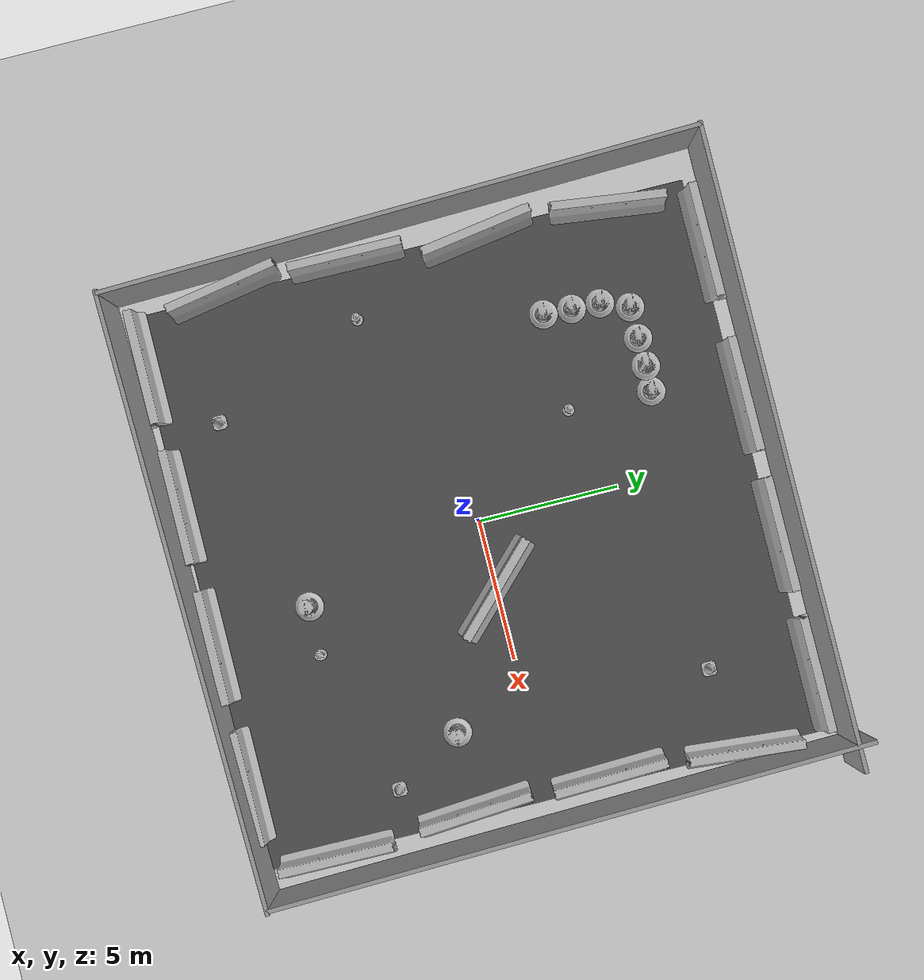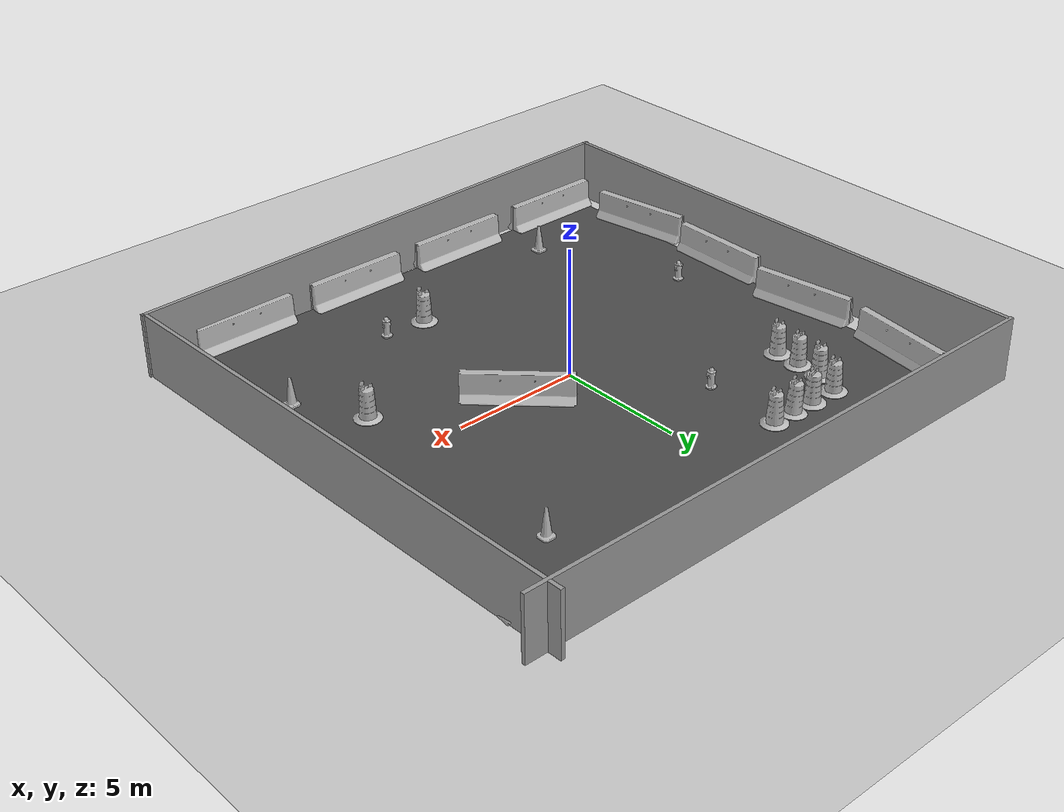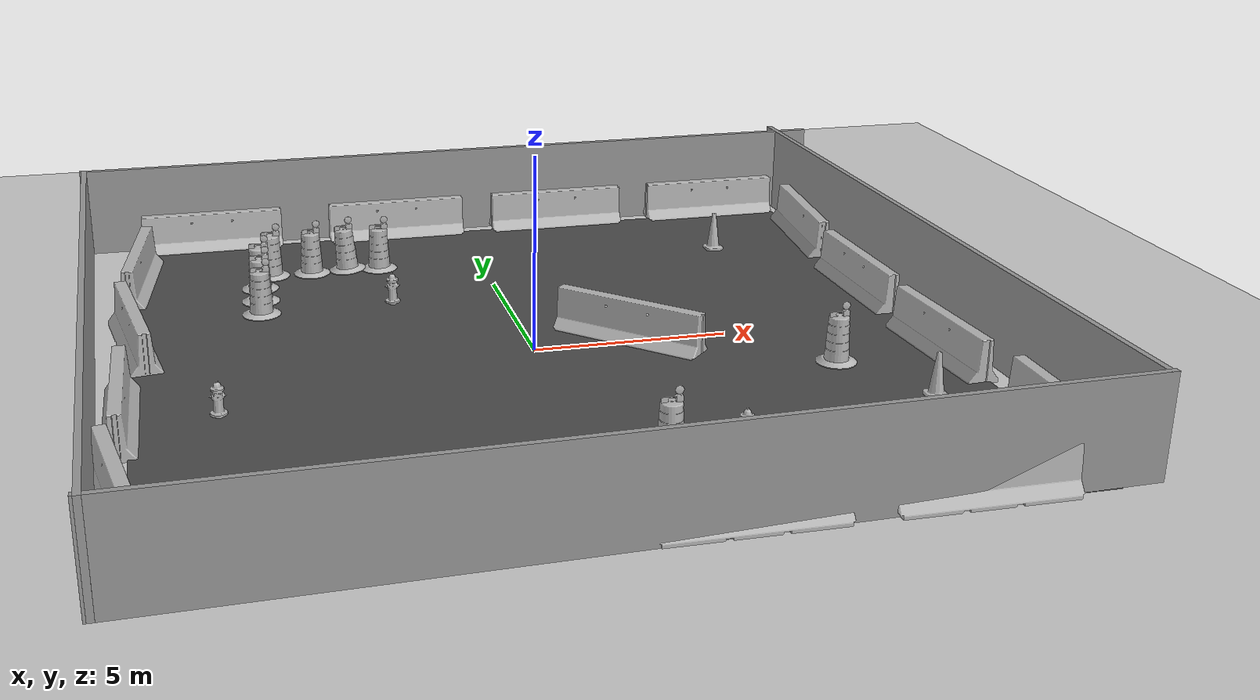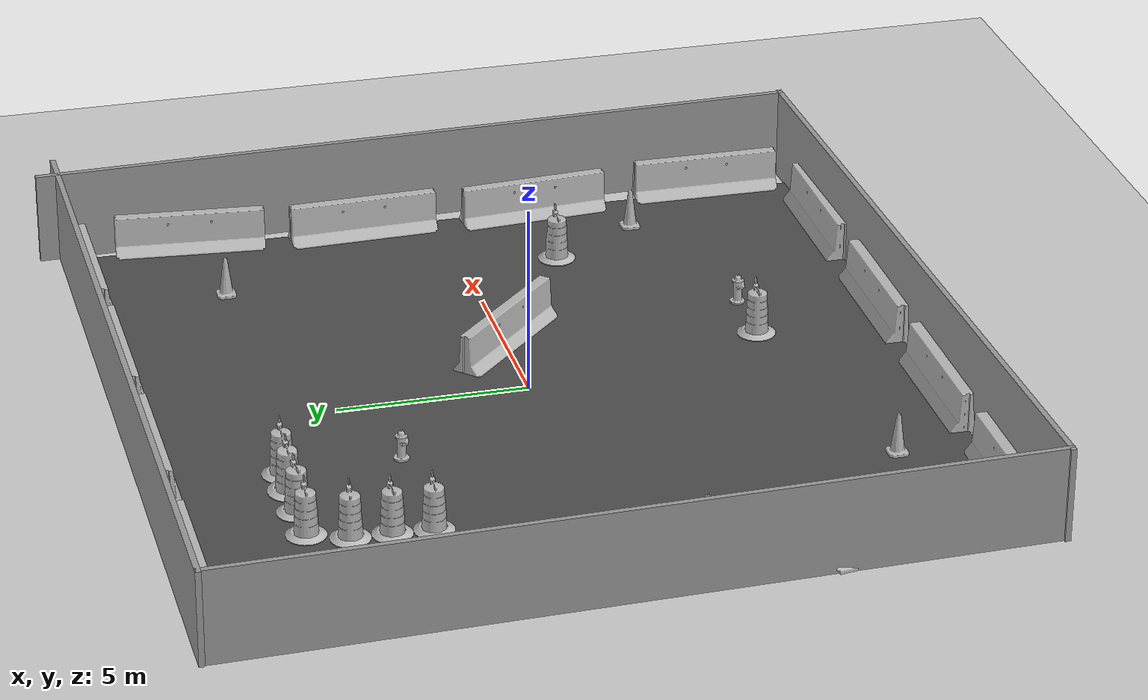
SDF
<sdf version="1.7">
 <world name="default">
  <spherical_coordinates>
   <surface_model>EARTH_WGS84</surface_model>
   <latitude_deg>43.5655</latitude_deg>
   <longitude_deg>1.474</longitude_deg>
   <elevation>150</elevation>
   <heading_deg>180</heading_deg>
  </spherical_coordinates>
  <light name="sun" type="directional">
   <pose>0 0 10 0 -0 0</pose>
   <diffuse>0.8 0.8 0.8 1</diffuse>
   <specular>0.2 0.2 0.2 1</specular>
   <attenuation>
    <range>1000</range>
    <constant>0.9</constant>
    <linear>0.01</linear>
    <quadratic>0.001</quadratic>
   </attenuation>
   <direction>-0.5 0.1 -0.9</direction>
   <spot><inner_angle>0</inner_angle><outer_angle>0</outer_angle><falloff>0</falloff></spot>
  </light>
  <model name="ground_plane">
   <static>1</static>
   <link name="link">
    <collision name="collision">
     <geometry><plane><normal>0 0 1</normal><size>100 100</size></plane></geometry>
     <surface><friction><ode><mu>100</mu><mu2>50</mu2></ode></friction></surface>
    </collision>
    <visual name="visual">
     <cast_shadows>0</cast_shadows>
     <geometry><plane><normal>0 0 1</normal><size>100 100</size></plane></geometry>
     <material>
      <script><uri>file://media/materials/scripts/gazebo.material</uri><name>Gazebo/Grey</name></script>
     </material>
    </visual>
    <velocity_decay><linear>0</linear><angular>0</angular></velocity_decay>
   </link>
  </model>
  <physics type="ode">
   <max_step_size>0.001</max_step_size>
   <real_time_factor>1</real_time_factor>
   <real_time_update_rate>1000</real_time_update_rate>
  </physics>
  <scene><ambient>0.4 0.4 0.4 1</ambient><background>0.7 0.7 0.7 1</background><shadows>1</shadows></scene>
  <model name="jersey_barrier">
   <static>1</static>
   <link name="link">
    <visual name="visual">
     <geometry><mesh><uri>model://jersey_barrier/meshes/jersey_barrier.dae</uri></mesh></geometry>
    </visual>
    <collision name="upright">
     <pose>0 0 0.5715 0 -0 0</pose>
     <geometry><box><size>4.06542 0.3063 1.143</size></box></geometry>
    </collision>
    <collision name="base">
     <pose>0 0 0.032258 0 -0 0</pose>
     <geometry><box><size>4.06542 0.8107 0.064516</size></box></geometry>
    </collision>
    <collision name="base2">
     <pose>0 0 0.1 0 -0 0</pose>
     <geometry><box><size>4.06542 0.65 0.1</size></box></geometry>
    </collision>
    <collision name="base3">
     <pose>0 0 0.2 0 -0 0</pose>
     <geometry><box><size>4.06542 0.5 0.1</size></box></geometry>
    </collision>
    <collision name="left-angle">
     <pose>0 -0.224 0.2401 0.9 -0 0</pose>
     <geometry><box><size>4.06542 0.5 0.064516</size></box></geometry>
    </collision>
    <collision name="right-angle">
     <pose>0 0.224 0.2401 -0.9 0 0</pose>
     <geometry><box><size>4.06542 0.5 0.064516</size></box></geometry>
    </collision>
    <velocity_decay><linear>0</linear><angular>0</angular></velocity_decay>
   </link>
   <pose>-8 -10 0 0 -0 0</pose>
  </model>
  <model name="jersey_barrier_0">
   <static>1</static>
   <link name="link">
    <visual name="visual">
     <geometry><mesh><uri>model://jersey_barrier/meshes/jersey_barrier.dae</uri></mesh></geometry>
    </visual>
    <collision name="upright">
     <pose>0 0 0.5715 0 -0 0</pose>
     <geometry><box><size>4.06542 0.3063 1.143</size></box></geometry>
    </collision>
    <collision name="base">
     <pose>0 0 0.032258 0 -0 0</pose>
     <geometry><box><size>4.06542 0.8107 0.064516</size></box></geometry>
    </collision>
    <collision name="base2">
     <pose>0 0 0.1 0 -0 0</pose>
     <geometry><box><size>4.06542 0.65 0.1</size></box></geometry>
    </collision>
    <collision name="base3">
     <pose>0 0 0.2 0 -0 0</pose>
     <geometry><box><size>4.06542 0.5 0.1</size></box></geometry>
    </collision>
    <collision name="left-angle">
     <pose>0 -0.224 0.2401 0.9 -0 0</pose>
     <geometry><box><size>4.06542 0.5 0.064516</size></box></geometry>
    </collision>
    <collision name="right-angle">
     <pose>0 0.224 0.2401 -0.9 0 0</pose>
     <geometry><box><size>4.06542 0.5 0.064516</size></box></geometry>
    </collision>
    <velocity_decay><linear>0</linear><angular>0</angular></velocity_decay>
   </link>
   <pose>-3 -10 0 0 -0 0</pose>
  </model>
  <model name="jersey_barrier_1">
   <static>1</static>
   <link name="link">
    <visual name="visual">
     <geometry><mesh><uri>model://jersey_barrier/meshes/jersey_barrier.dae</uri></mesh></geometry>
    </visual>
    <collision name="upright">
     <pose>0 0 0.5715 0 -0 0</pose>
     <geometry><box><size>4.06542 0.3063 1.143</size></box></geometry>
    </collision>
    <collision name="base">
     <pose>0 0 0.032258 0 -0 0</pose>
     <geometry><box><size>4.06542 0.8107 0.064516</size></box></geometry>
    </collision>
    <collision name="base2">
     <pose>0 0 0.1 0 -0 0</pose>
     <geometry><box><size>4.06542 0.65 0.1</size></box></geometry>
    </collision>
    <collision name="base3">
     <pose>0 0 0.2 0 -0 0</pose>
     <geometry><box><size>4.06542 0.5 0.1</size></box></geometry>
    </collision>
    <collision name="left-angle">
     <pose>0 -0.224 0.2401 0.9 -0 0</pose>
     <geometry><box><size>4.06542 0.5 0.064516</size></box></geometry>
    </collision>
    <collision name="right-angle">
     <pose>0 0.224 0.2401 -0.9 0 0</pose>
     <geometry><box><size>4.06542 0.5 0.064516</size></box></geometry>
    </collision>
    <velocity_decay><linear>0</linear><angular>0</angular></velocity_decay>
   </link>
   <pose>2 -10 0 0 -0 0</pose>
  </model>
  <model name="jersey_barrier_2">
   <static>1</static>
   <link name="link">
    <visual name="visual">
     <geometry><mesh><uri>model://jersey_barrier/meshes/jersey_barrier.dae</uri></mesh></geometry>
    </visual>
    <collision name="upright">
     <pose>0 0 0.5715 0 -0 0</pose>
     <geometry><box><size>4.06542 0.3063 1.143</size></box></geometry>
    </collision>
    <collision name="base">
     <pose>0 0 0.032258 0 -0 0</pose>
     <geometry><box><size>4.06542 0.8107 0.064516</size></box></geometry>
    </collision>
    <collision name="base2">
     <pose>0 0 0.1 0 -0 0</pose>
     <geometry><box><size>4.06542 0.65 0.1</size></box></geometry>
    </collision>
    <collision name="base3">
     <pose>0 0 0.2 0 -0 0</pose>
     <geometry><box><size>4.06542 0.5 0.1</size></box></geometry>
    </collision>
    <collision name="left-angle">
     <pose>0 -0.224 0.2401 0.9 -0 0</pose>
     <geometry><box><size>4.06542 0.5 0.064516</size></box></geometry>
    </collision>
    <collision name="right-angle">
     <pose>0 0.224 0.2401 -0.9 0 0</pose>
     <geometry><box><size>4.06542 0.5 0.064516</size></box></geometry>
    </collision>
    <velocity_decay><linear>0</linear><angular>0</angular></velocity_decay>
   </link>
   <pose>7 -10 0 0 -0 0</pose>
  </model>
  <model name="jersey_barrier_3">
   <static>1</static>
   <link name="link">
    <visual name="visual">
     <geometry><mesh><uri>model://jersey_barrier/meshes/jersey_barrier.dae</uri></mesh></geometry>
    </visual>
    <collision name="upright">
     <pose>0 0 0.5715 0 -0 0</pose>
     <geometry><box><size>4.06542 0.3063 1.143</size></box></geometry>
    </collision>
    <collision name="base">
     <pose>0 0 0.032258 0 -0 0</pose>
     <geometry><box><size>4.06542 0.8107 0.064516</size></box></geometry>
    </collision>
    <collision name="base2">
     <pose>0 0 0.1 0 -0 0</pose>
     <geometry><box><size>4.06542 0.65 0.1</size></box></geometry>
    </collision>
    <collision name="base3">
     <pose>0 0 0.2 0 -0 0</pose>
     <geometry><box><size>4.06542 0.5 0.1</size></box></geometry>
    </collision>
    <collision name="left-angle">
     <pose>0 -0.224 0.2401 0.9 -0 0</pose>
     <geometry><box><size>4.06542 0.5 0.064516</size></box></geometry>
    </collision>
    <collision name="right-angle">
     <pose>0 0.224 0.2401 -0.9 0 0</pose>
     <geometry><box><size>4.06542 0.5 0.064516</size></box></geometry>
    </collision>
    <velocity_decay><linear>0</linear><angular>0</angular></velocity_decay>
   </link>
   <pose>-7.50675 10 0 0 -0 0</pose>
  </model>
  <model name="jersey_barrier_4">
   <static>1</static>
   <link name="link">
    <visual name="visual">
     <geometry><mesh><uri>model://jersey_barrier/meshes/jersey_barrier.dae</uri></mesh></geometry>
    </visual>
    <collision name="upright">
     <pose>0 0 0.5715 0 -0 0</pose>
     <geometry><box><size>4.06542 0.3063 1.143</size></box></geometry>
    </collision>
    <collision name="base">
     <pose>0 0 0.032258 0 -0 0</pose>
     <geometry><box><size>4.06542 0.8107 0.064516</size></box></geometry>
    </collision>
    <collision name="base2">
     <pose>0 0 0.1 0 -0 0</pose>
     <geometry><box><size>4.06542 0.65 0.1</size></box></geometry>
    </collision>
    <collision name="base3">
     <pose>0 0 0.2 0 -0 0</pose>
     <geometry><box><size>4.06542 0.5 0.1</size></box></geometry>
    </collision>
    <collision name="left-angle">
     <pose>0 -0.224 0.2401 0.9 -0 0</pose>
     <geometry><box><size>4.06542 0.5 0.064516</size></box></geometry>
    </collision>
    <collision name="right-angle">
     <pose>0 0.224 0.2401 -0.9 0 0</pose>
     <geometry><box><size>4.06542 0.5 0.064516</size></box></geometry>
    </collision>
    <velocity_decay><linear>0</linear><angular>0</angular></velocity_decay>
   </link>
   <pose>-2 10 0 0 -0 0</pose>
  </model>
  <model name="jersey_barrier_5">
   <static>1</static>
   <link name="link">
    <visual name="visual">
     <geometry><mesh><uri>model://jersey_barrier/meshes/jersey_barrier.dae</uri></mesh></geometry>
    </visual>
    <collision name="upright">
     <pose>0 0 0.5715 0 -0 0</pose>
     <geometry><box><size>4.06542 0.3063 1.143</size></box></geometry>
    </collision>
    <collision name="base">
     <pose>0 0 0.032258 0 -0 0</pose>
     <geometry><box><size>4.06542 0.8107 0.064516</size></box></geometry>
    </collision>
    <collision name="base2">
     <pose>0 0 0.1 0 -0 0</pose>
     <geometry><box><size>4.06542 0.65 0.1</size></box></geometry>
    </collision>
    <collision name="base3">
     <pose>0 0 0.2 0 -0 0</pose>
     <geometry><box><size>4.06542 0.5 0.1</size></box></geometry>
    </collision>
    <collision name="left-angle">
     <pose>0 -0.224 0.2401 0.9 -0 0</pose>
     <geometry><box><size>4.06542 0.5 0.064516</size></box></geometry>
    </collision>
    <collision name="right-angle">
     <pose>0 0.224 0.2401 -0.9 0 0</pose>
     <geometry><box><size>4.06542 0.5 0.064516</size></box></geometry>
    </collision>
    <velocity_decay><linear>0</linear><angular>0</angular></velocity_decay>
   </link>
   <pose>3 10 0 0 -0 0</pose>
  </model>
  <model name="jersey_barrier_6">
   <static>1</static>
   <link name="link">
    <visual name="visual">
     <geometry><mesh><uri>model://jersey_barrier/meshes/jersey_barrier.dae</uri></mesh></geometry>
    </visual>
    <collision name="upright">
     <pose>0 0 0.5715 0 -0 0</pose>
     <geometry><box><size>4.06542 0.3063 1.143</size></box></geometry>
    </collision>
    <collision name="base">
     <pose>0 0 0.032258 0 -0 0</pose>
     <geometry><box><size>4.06542 0.8107 0.064516</size></box></geometry>
    </collision>
    <collision name="base2">
     <pose>0 0 0.1 0 -0 0</pose>
     <geometry><box><size>4.06542 0.65 0.1</size></box></geometry>
    </collision>
    <collision name="base3">
     <pose>0 0 0.2 0 -0 0</pose>
     <geometry><box><size>4.06542 0.5 0.1</size></box></geometry>
    </collision>
    <collision name="left-angle">
     <pose>0 -0.224 0.2401 0.9 -0 0</pose>
     <geometry><box><size>4.06542 0.5 0.064516</size></box></geometry>
    </collision>
    <collision name="right-angle">
     <pose>0 0.224 0.2401 -0.9 0 0</pose>
     <geometry><box><size>4.06542 0.5 0.064516</size></box></geometry>
    </collision>
    <velocity_decay><linear>0</linear><angular>0</angular></velocity_decay>
   </link>
   <pose>8 10 0 0 -0 0</pose>
  </model>
  <model name="jersey_barrier_7">
   <static>1</static>
   <link name="link">
    <visual name="visual">
     <geometry><mesh><uri>model://jersey_barrier/meshes/jersey_barrier.dae</uri></mesh></geometry>
    </visual>
    <collision name="upright">
     <pose>0 0 0.5715 0 -0 0</pose>
     <geometry><box><size>4.06542 0.3063 1.143</size></box></geometry>
    </collision>
    <collision name="base">
     <pose>0 0 0.032258 0 -0 0</pose>
     <geometry><box><size>4.06542 0.8107 0.064516</size></box></geometry>
    </collision>
    <collision name="base2">
     <pose>0 0 0.1 0 -0 0</pose>
     <geometry><box><size>4.06542 0.65 0.1</size></box></geometry>
    </collision>
    <collision name="base3">
     <pose>0 0 0.2 0 -0 0</pose>
     <geometry><box><size>4.06542 0.5 0.1</size></box></geometry>
    </collision>
    <collision name="left-angle">
     <pose>0 -0.224 0.2401 0.9 -0 0</pose>
     <geometry><box><size>4.06542 0.5 0.064516</size></box></geometry>
    </collision>
    <collision name="right-angle">
     <pose>0 0.224 0.2401 -0.9 0 0</pose>
     <geometry><box><size>4.06542 0.5 0.064516</size></box></geometry>
    </collision>
    <velocity_decay><linear>0</linear><angular>0</angular></velocity_decay>
   </link>
   <pose>9.74902 -2.57759 0 0 -0 1.64</pose>
  </model>
  <model name="jersey_barrier_8">
   <static>1</static>
   <link name="link">
    <visual name="visual">
     <geometry><mesh><uri>model://jersey_barrier/meshes/jersey_barrier.dae</uri></mesh></geometry>
    </visual>
    <collision name="upright">
     <pose>0 0 0.5715 0 -0 0</pose>
     <geometry><box><size>4.06542 0.3063 1.143</size></box></geometry>
    </collision>
    <collision name="base">
     <pose>0 0 0.032258 0 -0 0</pose>
     <geometry><box><size>4.06542 0.8107 0.064516</size></box></geometry>
    </collision>
    <collision name="base2">
     <pose>0 0 0.1 0 -0 0</pose>
     <geometry><box><size>4.06542 0.65 0.1</size></box></geometry>
    </collision>
    <collision name="base3">
     <pose>0 0 0.2 0 -0 0</pose>
     <geometry><box><size>4.06542 0.5 0.1</size></box></geometry>
    </collision>
    <collision name="left-angle">
     <pose>0 -0.224 0.2401 0.9 -0 0</pose>
     <geometry><box><size>4.06542 0.5 0.064516</size></box></geometry>
    </collision>
    <collision name="right-angle">
     <pose>0 0.224 0.2401 -0.9 0 0</pose>
     <geometry><box><size>4.06542 0.5 0.064516</size></box></geometry>
    </collision>
    <velocity_decay><linear>0</linear><angular>0</angular></velocity_decay>
   </link>
   <pose>9.70141 2.24369 0 0 -0 1.6</pose>
  </model>
  <model name="jersey_barrier_9">
   <static>1</static>
   <link name="link">
    <visual name="visual">
     <geometry><mesh><uri>model://jersey_barrier/meshes/jersey_barrier.dae</uri></mesh></geometry>
    </visual>
    <collision name="upright">
     <pose>0 0 0.5715 0 -0 0</pose>
     <geometry><box><size>4.06542 0.3063 1.143</size></box></geometry>
    </collision>
    <collision name="base">
     <pose>0 0 0.032258 0 -0 0</pose>
     <geometry><box><size>4.06542 0.8107 0.064516</size></box></geometry>
    </collision>
    <collision name="base2">
     <pose>0 0 0.1 0 -0 0</pose>
     <geometry><box><size>4.06542 0.65 0.1</size></box></geometry>
    </collision>
    <collision name="base3">
     <pose>0 0 0.2 0 -0 0</pose>
     <geometry><box><size>4.06542 0.5 0.1</size></box></geometry>
    </collision>
    <collision name="left-angle">
     <pose>0 -0.224 0.2401 0.9 -0 0</pose>
     <geometry><box><size>4.06542 0.5 0.064516</size></box></geometry>
    </collision>
    <collision name="right-angle">
     <pose>0 0.224 0.2401 -0.9 0 0</pose>
     <geometry><box><size>4.06542 0.5 0.064516</size></box></geometry>
    </collision>
    <velocity_decay><linear>0</linear><angular>0</angular></velocity_decay>
   </link>
   <pose>-10.0607 -6.69856 0 0 0 -1.4</pose>
  </model>
  <model name="jersey_barrier_10">
   <static>1</static>
   <link name="link">
    <visual name="visual">
     <geometry><mesh><uri>model://jersey_barrier/meshes/jersey_barrier.dae</uri></mesh></geometry>
    </visual>
    <collision name="upright">
     <pose>0 0 0.5715 0 -0 0</pose>
     <geometry><box><size>4.06542 0.3063 1.143</size></box></geometry>
    </collision>
    <collision name="base">
     <pose>0 0 0.032258 0 -0 0</pose>
     <geometry><box><size>4.06542 0.8107 0.064516</size></box></geometry>
    </collision>
    <collision name="base2">
     <pose>0 0 0.1 0 -0 0</pose>
     <geometry><box><size>4.06542 0.65 0.1</size></box></geometry>
    </collision>
    <collision name="base3">
     <pose>0 0 0.2 0 -0 0</pose>
     <geometry><box><size>4.06542 0.5 0.1</size></box></geometry>
    </collision>
    <collision name="left-angle">
     <pose>0 -0.224 0.2401 0.9 -0 0</pose>
     <geometry><box><size>4.06542 0.5 0.064516</size></box></geometry>
    </collision>
    <collision name="right-angle">
     <pose>0 0.224 0.2401 -0.9 0 0</pose>
     <geometry><box><size>4.06542 0.5 0.064516</size></box></geometry>
    </collision>
    <velocity_decay><linear>0</linear><angular>0</angular></velocity_decay>
   </link>
   <pose>-10.0774 -2.27159 0 0 -0 1.56</pose>
  </model>
  <model name="jersey_barrier_11">
   <static>1</static>
   <link name="link">
    <visual name="visual">
     <geometry><mesh><uri>model://jersey_barrier/meshes/jersey_barrier.dae</uri></mesh></geometry>
    </visual>
    <collision name="upright">
     <pose>0 0 0.5715 0 -0 0</pose>
     <geometry><box><size>4.06542 0.3063 1.143</size></box></geometry>
    </collision>
    <collision name="base">
     <pose>0 0 0.032258 0 -0 0</pose>
     <geometry><box><size>4.06542 0.8107 0.064516</size></box></geometry>
    </collision>
    <collision name="base2">
     <pose>0 0 0.1 0 -0 0</pose>
     <geometry><box><size>4.06542 0.65 0.1</size></box></geometry>
    </collision>
    <collision name="base3">
     <pose>0 0 0.2 0 -0 0</pose>
     <geometry><box><size>4.06542 0.5 0.1</size></box></geometry>
    </collision>
    <collision name="left-angle">
     <pose>0 -0.224 0.2401 0.9 -0 0</pose>
     <geometry><box><size>4.06542 0.5 0.064516</size></box></geometry>
    </collision>
    <collision name="right-angle">
     <pose>0 0.224 0.2401 -0.9 0 0</pose>
     <geometry><box><size>4.06542 0.5 0.064516</size></box></geometry>
    </collision>
    <velocity_decay><linear>0</linear><angular>0</angular></velocity_decay>
   </link>
   <pose>-9.77013 2.34791 0 0 -0 1.72</pose>
  </model>
  <model name="jersey_barrier_12">
   <static>1</static>
   <link name="link">
    <visual name="visual">
     <geometry><mesh><uri>model://jersey_barrier/meshes/jersey_barrier.dae</uri></mesh></geometry>
    </visual>
    <collision name="upright">
     <pose>0 0 0.5715 0 -0 0</pose>
     <geometry><box><size>4.06542 0.3063 1.143</size></box></geometry>
    </collision>
    <collision name="base">
     <pose>0 0 0.032258 0 -0 0</pose>
     <geometry><box><size>4.06542 0.8107 0.064516</size></box></geometry>
    </collision>
    <collision name="base2">
     <pose>0 0 0.1 0 -0 0</pose>
     <geometry><box><size>4.06542 0.65 0.1</size></box></geometry>
    </collision>
    <collision name="base3">
     <pose>0 0 0.2 0 -0 0</pose>
     <geometry><box><size>4.06542 0.5 0.1</size></box></geometry>
    </collision>
    <collision name="left-angle">
     <pose>0 -0.224 0.2401 0.9 -0 0</pose>
     <geometry><box><size>4.06542 0.5 0.064516</size></box></geometry>
    </collision>
    <collision name="right-angle">
     <pose>0 0.224 0.2401 -0.9 0 0</pose>
     <geometry><box><size>4.06542 0.5 0.064516</size></box></geometry>
    </collision>
    <velocity_decay><linear>0</linear><angular>0</angular></velocity_decay>
   </link>
   <pose>10.0879 -7.62159 0 0 -0 1.56</pose>
  </model>
  <model name="jersey_barrier_13">
   <static>1</static>
   <link name="link">
    <visual name="visual">
     <geometry><mesh><uri>model://jersey_barrier/meshes/jersey_barrier.dae</uri></mesh></geometry>
    </visual>
    <collision name="upright">
     <pose>0 0 0.5715 0 -0 0</pose>
     <geometry><box><size>4.06542 0.3063 1.143</size></box></geometry>
    </collision>
    <collision name="base">
     <pose>0 0 0.032258 0 -0 0</pose>
     <geometry><box><size>4.06542 0.8107 0.064516</size></box></geometry>
    </collision>
    <collision name="base2">
     <pose>0 0 0.1 0 -0 0</pose>
     <geometry><box><size>4.06542 0.65 0.1</size></box></geometry>
    </collision>
    <collision name="base3">
     <pose>0 0 0.2 0 -0 0</pose>
     <geometry><box><size>4.06542 0.5 0.1</size></box></geometry>
    </collision>
    <collision name="left-angle">
     <pose>0 -0.224 0.2401 0.9 -0 0</pose>
     <geometry><box><size>4.06542 0.5 0.064516</size></box></geometry>
    </collision>
    <collision name="right-angle">
     <pose>0 0.224 0.2401 -0.9 0 0</pose>
     <geometry><box><size>4.06542 0.5 0.064516</size></box></geometry>
    </collision>
    <velocity_decay><linear>0</linear><angular>0</angular></velocity_decay>
   </link>
   <pose>10 7 0 0 -0 1.48</pose>
  </model>
  <model name="jersey_barrier_14">
   <static>1</static>
   <link name="link">
    <visual name="visual">
     <geometry><mesh><uri>model://jersey_barrier/meshes/jersey_barrier.dae</uri></mesh></geometry>
    </visual>
    <collision name="upright">
     <pose>0 0 0.5715 0 -0 0</pose>
     <geometry><box><size>4.06542 0.3063 1.143</size></box></geometry>
    </collision>
    <collision name="base">
     <pose>0 0 0.032258 0 -0 0</pose>
     <geometry><box><size>4.06542 0.8107 0.064516</size></box></geometry>
    </collision>
    <collision name="base2">
     <pose>0 0 0.1 0 -0 0</pose>
     <geometry><box><size>4.06542 0.65 0.1</size></box></geometry>
    </collision>
    <collision name="base3">
     <pose>0 0 0.2 0 -0 0</pose>
     <geometry><box><size>4.06542 0.5 0.1</size></box></geometry>
    </collision>
    <collision name="left-angle">
     <pose>0 -0.224 0.2401 0.9 -0 0</pose>
     <geometry><box><size>4.06542 0.5 0.064516</size></box></geometry>
    </collision>
    <collision name="right-angle">
     <pose>0 0.224 0.2401 -0.9 0 0</pose>
     <geometry><box><size>4.06542 0.5 0.064516</size></box></geometry>
    </collision>
    <velocity_decay><linear>0</linear><angular>0</angular></velocity_decay>
   </link>
   <pose>-9.64482 7.05946 0 0 -0 1.44</pose>
  </model>
  <model name="fire_hydrant">
   <static>1</static>
   <link name="link">
    <collision name="collision">
     <geometry><mesh><uri>model://fire_hydrant/meshes/fire_hydrant.dae</uri></mesh></geometry>
    </collision>
    <visual name="visual">
     <geometry><mesh><uri>model://fire_hydrant/meshes/fire_hydrant.dae</uri></mesh></geometry>
    </visual>
    <velocity_decay><linear>0</linear><angular>0</angular></velocity_decay>
   </link>
   <pose>3.18024 -6.51118 0 0 -0 0</pose>
  </model>
  <model name="fire_hydrant_0">
   <static>1</static>
   <link name="link">
    <collision name="collision">
     <geometry><mesh><uri>model://fire_hydrant/meshes/fire_hydrant.dae</uri></mesh></geometry>
    </collision>
    <visual name="visual">
     <geometry><mesh><uri>model://fire_hydrant/meshes/fire_hydrant.dae</uri></mesh></geometry>
    </visual>
    <velocity_decay><linear>0</linear><angular>0</angular></velocity_decay>
   </link>
   <pose>-3 4 0 0 -0 0</pose>
  </model>
  <model name="fire_hydrant_1">
   <static>1</static>
   <link name="link">
    <collision name="collision">
     <geometry><mesh><uri>model://fire_hydrant/meshes/fire_hydrant.dae</uri></mesh></geometry>
    </collision>
    <visual name="visual">
     <geometry><mesh><uri>model://fire_hydrant/meshes/fire_hydrant.dae</uri></mesh></geometry>
    </visual>
    <velocity_decay><linear>0</linear><angular>0</angular></velocity_decay>
   </link>
   <pose>-7.90686 -2.41363 0 0 -0 0</pose>
  </model>
  <model name="jersey_barrier_15">
   <static>1</static>
   <link name="link">
    <visual name="visual">
     <geometry><mesh><uri>model://jersey_barrier/meshes/jersey_barrier.dae</uri></mesh></geometry>
    </visual>
    <collision name="upright">
     <pose>0 0 0.5715 0 -0 0</pose>
     <geometry><box><size>4.06542 0.3063 1.143</size></box></geometry>
    </collision>
    <collision name="base">
     <pose>0 0 0.032258 0 -0 0</pose>
     <geometry><box><size>4.06542 0.8107 0.064516</size></box></geometry>
    </collision>
    <collision name="base2">
     <pose>0 0 0.1 0 -0 0</pose>
     <geometry><box><size>4.06542 0.65 0.1</size></box></geometry>
    </collision>
    <collision name="base3">
     <pose>0 0 0.2 0 -0 0</pose>
     <geometry><box><size>4.06542 0.5 0.1</size></box></geometry>
    </collision>
    <collision name="left-angle">
     <pose>0 -0.224 0.2401 0.9 -0 0</pose>
     <geometry><box><size>4.06542 0.5 0.064516</size></box></geometry>
    </collision>
    <collision name="right-angle">
     <pose>0 0.224 0.2401 -0.9 0 0</pose>
     <geometry><box><size>4.06542 0.5 0.064516</size></box></geometry>
    </collision>
    <velocity_decay><linear>0</linear><angular>0</angular></velocity_decay>
   </link>
   <pose>2.45495 0 0 0 -0 2.36</pose>
  </model>
  <model name="Construction Cone">
   <link name="link">
    <collision name="collision">
     <geometry>
      <mesh><scale>10 10 10</scale><uri>model://construction_cone/meshes/construction_cone.dae</uri></mesh>
     </geometry>
    </collision>
    <visual name="visual">
     <geometry>
      <mesh><scale>10 10 10</scale><uri>model://construction_cone/meshes/construction_cone.dae</uri></mesh>
     </geometry>
    </visual>
    <velocity_decay><linear>0</linear><angular>0</angular></velocity_decay>
    <inertial>
     <inertia><ixx>1</ixx><ixy>0</ixy><ixz>0</ixz><iyy>1</iyy><iyz>0</iyz><izz>1</izz></inertia>
     <mass>1</mass>
    </inertial>
   </link>
   <pose>-5.59121 -8 0.05 -0 -0 -0</pose>
   <static>0</static>
  </model>
  <model name="Construction Barrel">
   <link name="link">
    <inertial>
     <pose>0 0 0.4 0 -0 0</pose>
     <mass>500</mass>
     <inertia><ixx>51.2096</ixx><iyy>51.2096</iyy><izz>25</izz><ixy>0</ixy><ixz>0</ixz><iyz>0</iyz></inertia>
    </inertial>
    <collision name="collision">
     <geometry><mesh><uri>model://construction_barrel/meshes/construction_barrel.dae</uri></mesh></geometry>
    </collision>
    <visual name="visual">
     <geometry><mesh><uri>model://construction_barrel/meshes/construction_barrel.dae</uri></mesh></geometry>
    </visual>
    <velocity_decay><linear>0</linear><angular>0</angular></velocity_decay>
   </link>
   <pose>7.00007 -2.54635 0.049999 4e-06 -0 0.000411</pose>
   <static>0</static>
  </model>
  <model name="Construction Cone_0">
   <link name="link">
    <collision name="collision">
     <geometry>
      <mesh><scale>10 10 10</scale><uri>model://construction_cone/meshes/construction_cone.dae</uri></mesh>
     </geometry>
    </collision>
    <visual name="visual">
     <geometry>
      <mesh><scale>10 10 10</scale><uri>model://construction_cone/meshes/construction_cone.dae</uri></mesh>
     </geometry>
    </visual>
    <velocity_decay><linear>0</linear><angular>0</angular></velocity_decay>
    <inertial>
     <inertia><ixx>1</ixx><ixy>0</ixy><ixz>0</ixz><iyy>1</iyy><iyz>0</iyz><izz>1</izz></inertia>
     <mass>1</mass>
    </inertial>
   </link>
   <pose>6.99685 6.55732 0.049999 -0 2e-06 -0.007012</pose>
   <static>0</static>
  </model>
  <model name="Construction Barrel_0">
   <link name="link">
    <inertial>
     <pose>0 0 0.4 0 -0 0</pose>
     <mass>500</mass>
     <inertia><ixx>51.2096</ixx><iyy>51.2096</iyy><izz>25</izz><ixy>0</ixy><ixz>0</ixz><iyz>0</iyz></inertia>
    </inertial>
    <collision name="collision">
     <geometry><mesh><uri>model://construction_barrel/meshes/construction_barrel.dae</uri></mesh></geometry>
    </collision>
    <visual name="visual">
     <geometry><mesh><uri>model://construction_barrel/meshes/construction_barrel.dae</uri></mesh></geometry>
    </visual>
    <velocity_decay><linear>0</linear><angular>0</angular></velocity_decay>
   </link>
   <pose>1.45179 -6.51128 0.049999 3e-06 -0 4.7e-05</pose>
   <static>0</static>
  </model>
  <model name="asphalt_plane">
   <static>1</static>
   <link name="link">
    <collision name="collision"><geometry><box><size>20 20 0.1</size></box></geometry></collision>
    <visual name="visual">
     <cast_shadows>0</cast_shadows>
     <geometry><box><size>20 20 0.1</size></box></geometry>
     <material>
      <script>
       <uri>model://asphalt_plane/materials/scripts</uri>
       <uri>model://asphalt_plane/materials/textures</uri>
       <name>vrc/asphalt</name>
      </script>
     </material>
    </visual>
    <velocity_decay><linear>0</linear><angular>0</angular></velocity_decay>
   </link>
   <pose>0.076733 -0.110379 0 0 -0 0</pose>
  </model>
  <model name="Construction Barrel_1">
   <link name="link">
    <inertial>
     <pose>0 0 0.4 0 -0 0</pose>
     <mass>500</mass>
     <inertia><ixx>51.2096</ixx><iyy>51.2096</iyy><izz>25</izz><ixy>0</ixy><ixz>0</ixz><iyz>0</iyz></inertia>
    </inertial>
    <collision name="collision">
     <geometry><mesh><uri>model://construction_barrel/meshes/construction_barrel.dae</uri></mesh></geometry>
    </collision>
    <visual name="visual">
     <geometry><mesh><uri>model://construction_barrel/meshes/construction_barrel.dae</uri></mesh></geometry>
    </visual>
    <velocity_decay><linear>0</linear><angular>0</angular></velocity_decay>
   </link>
   <pose>-6.50481 3.9826 0.049999 -1e-06 -2e-06 -0.009606</pose>
   <static>0</static>
  </model>
  <model name="Construction Barrel_2">
   <link name="link">
    <inertial>
     <pose>0 0 0.4 0 -0 0</pose>
     <mass>500</mass>
     <inertia><ixx>51.2096</ixx><iyy>51.2096</iyy><izz>25</izz><ixy>0</ixy><ixz>0</ixz><iyz>0</iyz></inertia>
    </inertial>
    <collision name="collision">
     <geometry><mesh><uri>model://construction_barrel/meshes/construction_barrel.dae</uri></mesh></geometry>
    </collision>
    <visual name="visual">
     <geometry><mesh><uri>model://construction_barrel/meshes/construction_barrel.dae</uri></mesh></geometry>
    </visual>
    <velocity_decay><linear>0</linear><angular>0</angular></velocity_decay>
   </link>
   <pose>-6.45064 4.99639 0.049999 2e-06 -0 0.06499</pose>
   <static>0</static>
  </model>
  <model name="Construction Barrel_3">
   <link name="link">
    <inertial>
     <pose>0 0 0.4 0 -0 0</pose>
     <mass>500</mass>
     <inertia><ixx>51.2096</ixx><iyy>51.2096</iyy><izz>25</izz><ixy>0</ixy><ixz>0</ixz><iyz>0</iyz></inertia>
    </inertial>
    <collision name="collision">
     <geometry><mesh><uri>model://construction_barrel/meshes/construction_barrel.dae</uri></mesh></geometry>
    </collision>
    <visual name="visual">
     <geometry><mesh><uri>model://construction_barrel/meshes/construction_barrel.dae</uri></mesh></geometry>
    </visual>
    <velocity_decay><linear>0</linear><angular>0</angular></velocity_decay>
   </link>
   <pose>-6.40173 6.0111 0.049999 -1e-06 -3e-06 -0.120721</pose>
   <static>0</static>
  </model>
  <model name="Construction Barrel_4">
   <link name="link">
    <inertial>
     <pose>0 0 0.4 0 -0 0</pose>
     <mass>500</mass>
     <inertia><ixx>51.2096</ixx><iyy>51.2096</iyy><izz>25</izz><ixy>0</ixy><ixz>0</ixz><iyz>0</iyz></inertia>
    </inertial>
    <collision name="collision">
     <geometry><mesh><uri>model://construction_barrel/meshes/construction_barrel.dae</uri></mesh></geometry>
    </collision>
    <visual name="visual">
     <geometry><mesh><uri>model://construction_barrel/meshes/construction_barrel.dae</uri></mesh></geometry>
    </visual>
    <velocity_decay><linear>0</linear><angular>0</angular></velocity_decay>
   </link>
   <pose>-6.00633 7.00879 0.049999 3e-06 0 -0.04956</pose>
   <static>0</static>
  </model>
  <model name="Construction Barrel_5">
   <link name="link">
    <inertial>
     <pose>0 0 0.4 0 -0 0</pose>
     <mass>500</mass>
     <inertia><ixx>51.2096</ixx><iyy>51.2096</iyy><izz>25</izz><ixy>0</ixy><ixz>0</ixz><iyz>0</iyz></inertia>
    </inertial>
    <collision name="collision">
     <geometry><mesh><uri>model://construction_barrel/meshes/construction_barrel.dae</uri></mesh></geometry>
    </collision>
    <visual name="visual">
     <geometry><mesh><uri>model://construction_barrel/meshes/construction_barrel.dae</uri></mesh></geometry>
    </visual>
    <velocity_decay><linear>0</linear><angular>0</angular></velocity_decay>
   </link>
   <pose>-4.87564 7.00814 0.05 -1e-06 -1e-06 0.146168</pose>
   <static>0</static>
  </model>
  <model name="Construction Barrel_6">
   <link name="link">
    <inertial>
     <pose>0 0 0.4 0 -0 0</pose>
     <mass>500</mass>
     <inertia><ixx>51.2096</ixx><iyy>51.2096</iyy><izz>25</izz><ixy>0</ixy><ixz>0</ixz><iyz>0</iyz></inertia>
    </inertial>
    <collision name="collision">
     <geometry><mesh><uri>model://construction_barrel/meshes/construction_barrel.dae</uri></mesh></geometry>
    </collision>
    <visual name="visual">
     <geometry><mesh><uri>model://construction_barrel/meshes/construction_barrel.dae</uri></mesh></geometry>
    </visual>
    <velocity_decay><linear>0</linear><angular>0</angular></velocity_decay>
   </link>
   <pose>-3.85383 7.0292 0.087996 -0.009838 -0.074581 0.019778</pose>
   <static>0</static>
  </model>
  <model name="Construction Barrel_7">
   <link name="link">
    <inertial>
     <pose>0 0 0.4 0 -0 0</pose>
     <mass>500</mass>
     <inertia><ixx>51.2096</ixx><iyy>51.2096</iyy><izz>25</izz><ixy>0</ixy><ixz>0</ixz><iyz>0</iyz></inertia>
    </inertial>
    <collision name="collision">
     <geometry><mesh><uri>model://construction_barrel/meshes/construction_barrel.dae</uri></mesh></geometry>
    </collision>
    <visual name="visual">
     <geometry><mesh><uri>model://construction_barrel/meshes/construction_barrel.dae</uri></mesh></geometry>
    </visual>
    <velocity_decay><linear>0</linear><angular>0</angular></velocity_decay>
   </link>
   <pose>-2.95149 6.9996 0.049986 9e-06 -1.2e-05 -0.01774</pose>
   <static>0</static>
  </model>
  <model name="Construction Cone_1">
   <link name="link">
    <collision name="collision">
     <geometry>
      <mesh><scale>10 10 10</scale><uri>model://construction_cone/meshes/construction_cone.dae</uri></mesh>
     </geometry>
    </collision>
    <visual name="visual">
     <geometry>
      <mesh><scale>10 10 10</scale><uri>model://construction_cone/meshes/construction_cone.dae</uri></mesh>
     </geometry>
    </visual>
    <velocity_decay><linear>0</linear><angular>0</angular></velocity_decay>
    <inertial>
     <inertia><ixx>1</ixx><ixy>0</ixy><ixz>0</ixz><iyy>1</iyy><iyz>0</iyz><izz>1</izz></inertia>
     <mass>1</mass>
    </inertial>
   </link>
   <pose>8.42887 -5 0.04999 0 -0 0</pose>
   <static>0</static>
  </model>
  <gravity>0 0 -9.8</gravity>
  <magnetic_field>6e-06 2.3e-05 -4.2e-05</magnetic_field>
  <atmosphere type="adiabatic"/>
  <audio><device>default</device></audio>
  <model name="Untitled">
   <pose>0.083811 0.205165 0 0 -0 0</pose>
   <link name="Wall_0">
    <collision name="Wall_0_Collision">
     <geometry><box><size>22.5 0.15 2.5</size></box></geometry>
     <pose>0 0 1.25 0 -0 0</pose>
    </collision>
    <visual name="Wall_0_Visual">
     <pose>0 0 1.25 0 -0 0</pose>
     <geometry><box><size>22.5 0.15 2.5</size></box></geometry>
     <material>
      <script><uri>file://media/materials/scripts/gazebo.material</uri><name>Gazebo/Grey</name></script>
      <ambient>1 1 1 1</ambient>
     </material>
     <meta><layer>0</layer></meta>
    </visual>
    <pose>0 10.252 0 0 -0 0</pose>
   </link>
   <link name="Wall_2">
    <collision name="Wall_2_Collision">
     <geometry><box><size>21.1688 0.15 2.5</size></box></geometry>
     <pose>0 0 1.25 0 -0 0</pose>
    </collision>
    <visual name="Wall_2_Visual">
     <pose>0 0 1.25 0 -0 0</pose>
     <geometry><box><size>21.1688 0.15 2.5</size></box></geometry>
     <material>
      <script><uri>file://media/materials/scripts/gazebo.material</uri><name>Gazebo/Grey</name></script>
      <ambient>1 1 1 1</ambient>
     </material>
     <meta><layer>0</layer></meta>
    </visual>
    <pose>-10.8595 -0.273651 0 0 -0 -1.54475</pose>
   </link>
   <link name="Wall_3">
    <collision name="Wall_3_Collision">
     <geometry><box><size>21.6686 0.15 2.5</size></box></geometry>
     <pose>0 0 1.25 0 -0 0</pose>
    </collision>
    <visual name="Wall_3_Visual">
     <pose>0 0 1.25 0 -0 0</pose>
     <geometry><box><size>21.6686 0.15 2.5</size></box></geometry>
     <material>
      <script><uri>file://media/materials/scripts/gazebo.material</uri><name>Gazebo/Grey</name></script>
      <ambient>1 1 1 1</ambient>
     </material>
     <meta><layer>0</layer></meta>
    </visual>
    <pose>0.109189 -10.5057 0 0 -0 0.025447</pose>
   </link>
   <link name="Wall_4">
    <collision name="Wall_4_Collision">
     <geometry><box><size>21.1673 0.15 2.5</size></box></geometry>
     <pose>0 0 1.25 0 -0 0</pose>
    </collision>
    <visual name="Wall_4_Visual">
     <pose>0 0 1.25 0 -0 0</pose>
     <geometry><box><size>21.1673 0.15 2.5</size></box></geometry>
     <material>
      <script><uri>file://media/materials/scripts/gazebo.material</uri><name>Gazebo/Grey</name></script>
      <ambient>1 1 1 1</ambient>
     </material>
     <meta><layer>0</layer></meta>
    </visual>
    <pose>10.5608 0.273864 0 0 -0 1.59396</pose>
   </link>
   <static>1</static>
  </model>
 </world>
</sdf>
